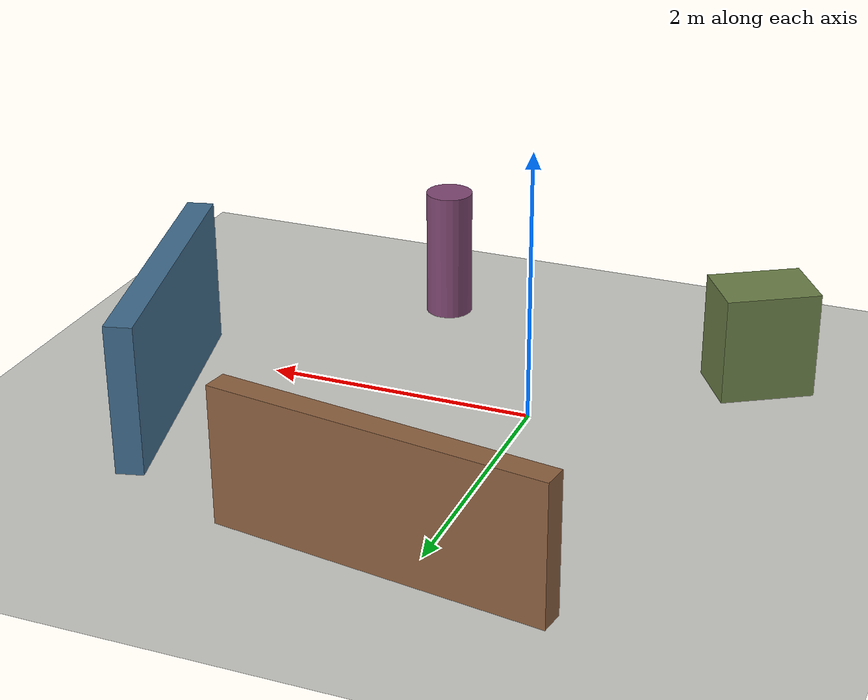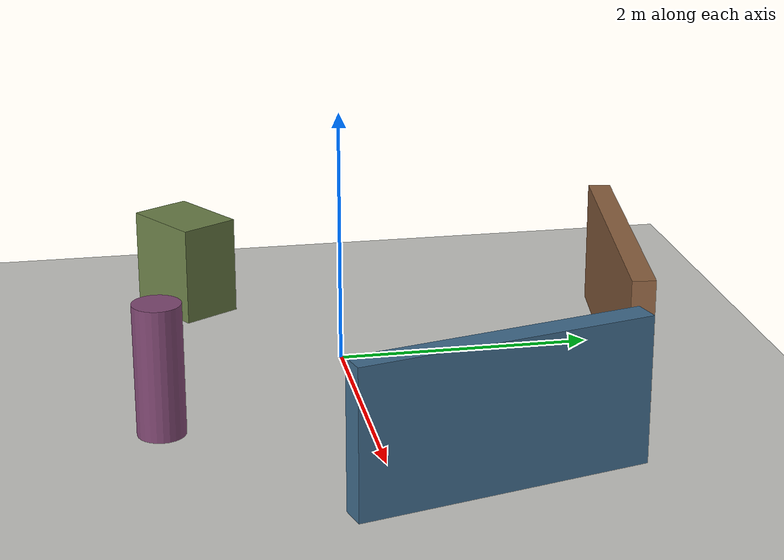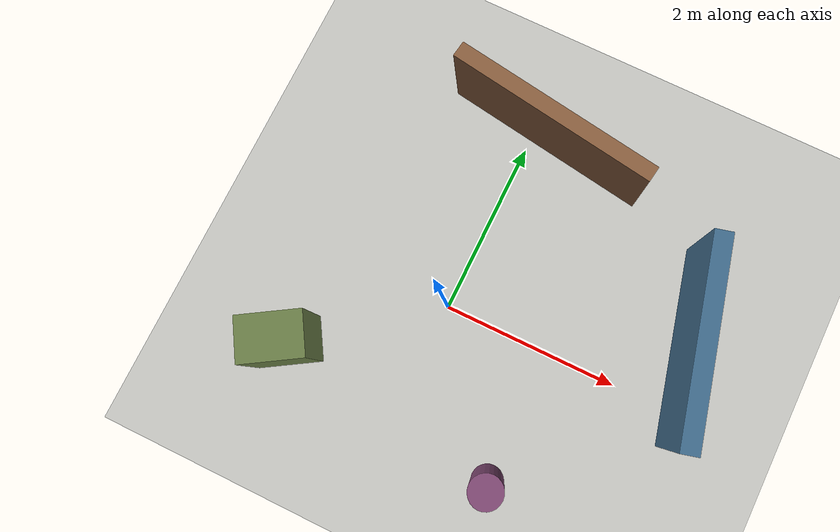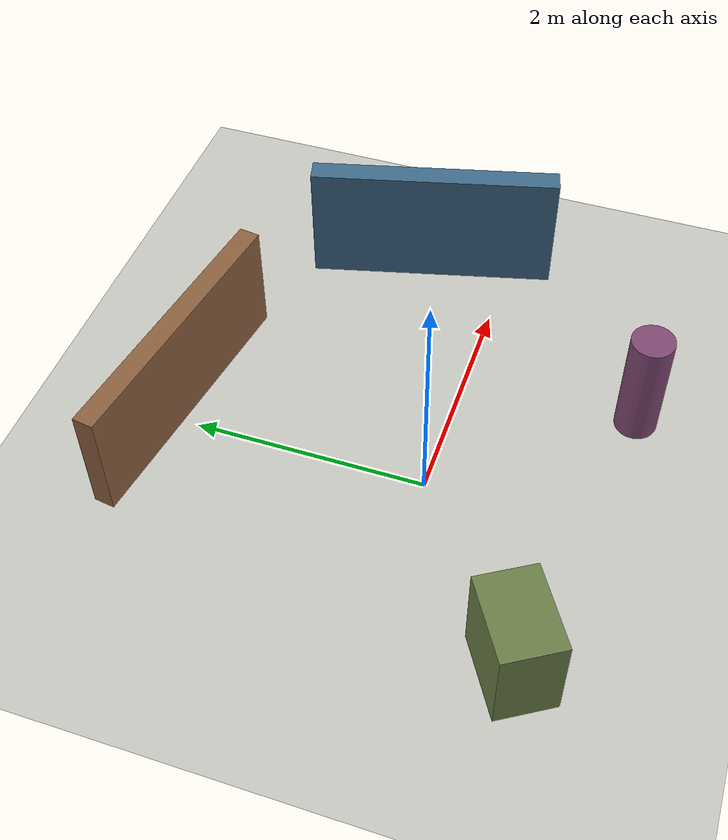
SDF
<?xml version="1.0" ?>
<sdf version="1.6">
  <world name="go2w_phase3a_feature_world">
    <physics name="1ms" type="ignored">
      <max_step_size>0.001</max_step_size>
      <real_time_factor>1.0</real_time_factor>
    </physics>

    <plugin filename="ignition-gazebo-physics-system" name="gz::sim::systems::Physics"/>
    <plugin filename="ignition-gazebo-sensors-system" name="gz::sim::systems::Sensors"/>
    <plugin filename="ignition-gazebo-imu-system" name="gz::sim::systems::Imu"/>
    <plugin filename="ignition-gazebo-user-commands-system" name="gz::sim::systems::UserCommands"/>
    <plugin filename="ignition-gazebo-scene-broadcaster-system" name="gz::sim::systems::SceneBroadcaster"/>

    <light type="directional" name="sun">
      <cast_shadows>true</cast_shadows>
      <pose>0 0 10 0 0 0</pose>
      <diffuse>0.8 0.8 0.8 1</diffuse>
      <specular>0.2 0.2 0.2 1</specular>
      <attenuation>
        <range>1000</range>
        <constant>0.9</constant>
        <linear>0.01</linear>
        <quadratic>0.001</quadratic>
      </attenuation>
      <direction>-0.5 0.1 -0.9</direction>
    </light>

    <model name="ground_plane">
      <static>true</static>
      <link name="link">
        <collision name="collision">
          <geometry>
            <plane>
              <normal>0 0 1</normal>
              <size>100 100</size>
            </plane>
          </geometry>
        </collision>
        <visual name="visual">
          <geometry>
            <plane>
              <normal>0 0 1</normal>
              <size>100 100</size>
            </plane>
          </geometry>
          <material>
            <ambient>0.78 0.78 0.76 1</ambient>
            <diffuse>0.78 0.78 0.76 1</diffuse>
            <specular>0.4 0.4 0.4 1</specular>
          </material>
        </visual>
      </link>
    </model>

    <model name="phase3a_feature_wall_front">
      <static>true</static>
      <pose>2.5 0.7 0.55 0 0 0.25</pose>
      <link name="link">
        <collision name="collision">
          <geometry>
            <box>
              <size>0.20 2.20 1.10</size>
            </box>
          </geometry>
        </collision>
        <visual name="visual">
          <geometry>
            <box>
              <size>0.20 2.20 1.10</size>
            </box>
          </geometry>
          <material>
            <ambient>0.25 0.42 0.55 1</ambient>
            <diffuse>0.25 0.42 0.55 1</diffuse>
          </material>
        </visual>
      </link>
    </model>

    <model name="phase3a_feature_wall_left">
      <static>true</static>
      <pose>0.2 2.2 0.50 0 0 -0.15</pose>
      <link name="link">
        <collision name="collision">
          <geometry>
            <box>
              <size>2.40 0.18 1.00</size>
            </box>
          </geometry>
        </collision>
        <visual name="visual">
          <geometry>
            <box>
              <size>2.40 0.18 1.00</size>
            </box>
          </geometry>
          <material>
            <ambient>0.55 0.38 0.25 1</ambient>
            <diffuse>0.55 0.38 0.25 1</diffuse>
          </material>
        </visual>
      </link>
    </model>

    <model name="phase3a_feature_box_rear">
      <static>true</static>
      <pose>-1.4 -1.1 0.40 0 0 0.55</pose>
      <link name="link">
        <collision name="collision">
          <geometry>
            <box>
              <size>0.70 0.50 0.80</size>
            </box>
          </geometry>
        </collision>
        <visual name="visual">
          <geometry>
            <box>
              <size>0.70 0.50 0.80</size>
            </box>
          </geometry>
          <material>
            <ambient>0.42 0.50 0.28 1</ambient>
            <diffuse>0.42 0.50 0.28 1</diffuse>
          </material>
        </visual>
      </link>
    </model>

    <model name="phase3a_feature_column">
      <static>true</static>
      <pose>1.2 -1.5 0.50 0 0 0</pose>
      <link name="link">
        <collision name="collision">
          <geometry>
            <cylinder>
              <radius>0.18</radius>
              <length>1.00</length>
            </cylinder>
          </geometry>
        </collision>
        <visual name="visual">
          <geometry>
            <cylinder>
              <radius>0.18</radius>
              <length>1.00</length>
            </cylinder>
          </geometry>
          <material>
            <ambient>0.50 0.28 0.45 1</ambient>
            <diffuse>0.50 0.28 0.45 1</diffuse>
          </material>
        </visual>
      </link>
    </model>
  </world>
</sdf>
